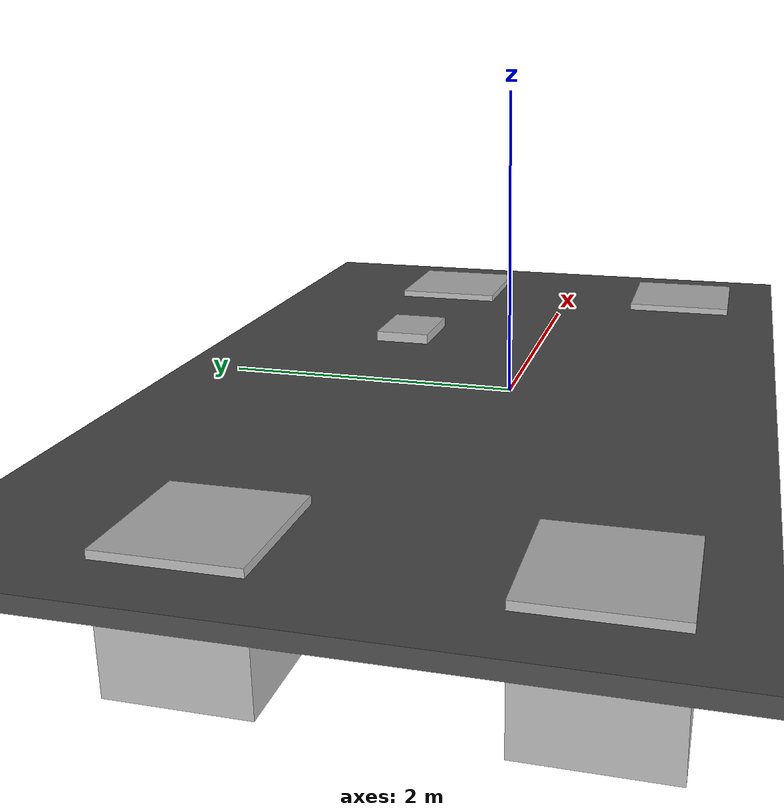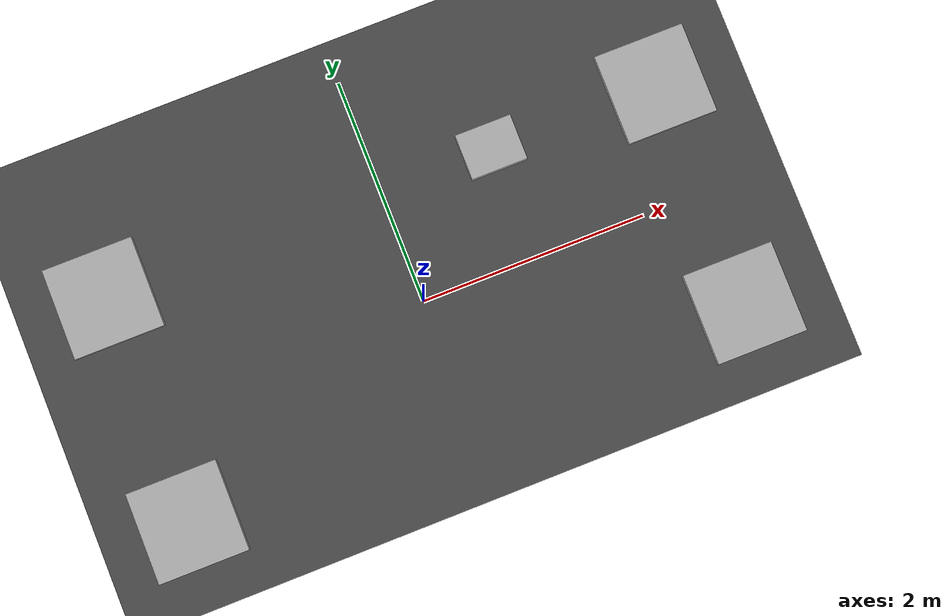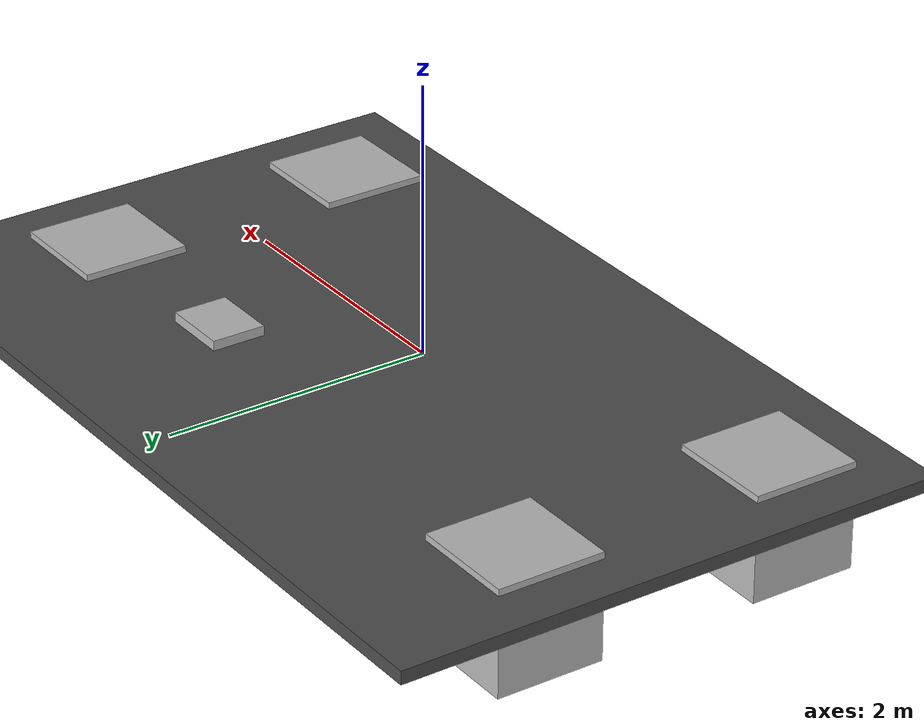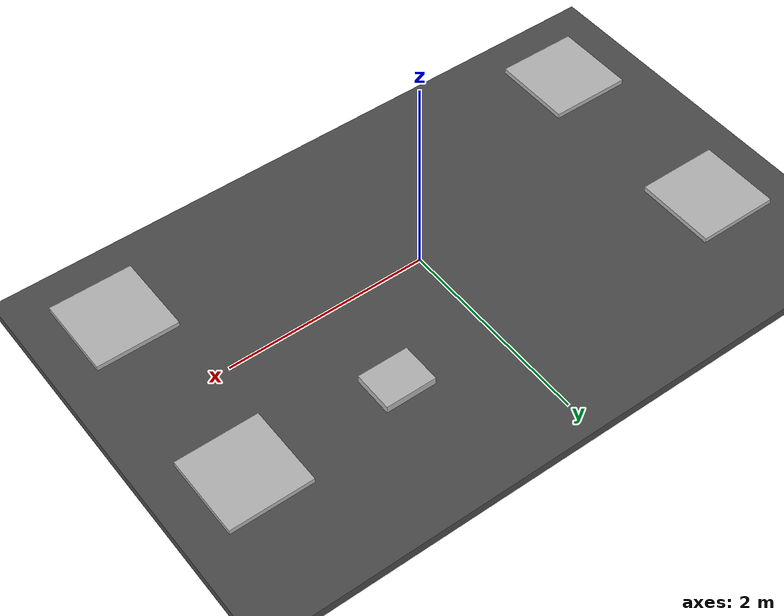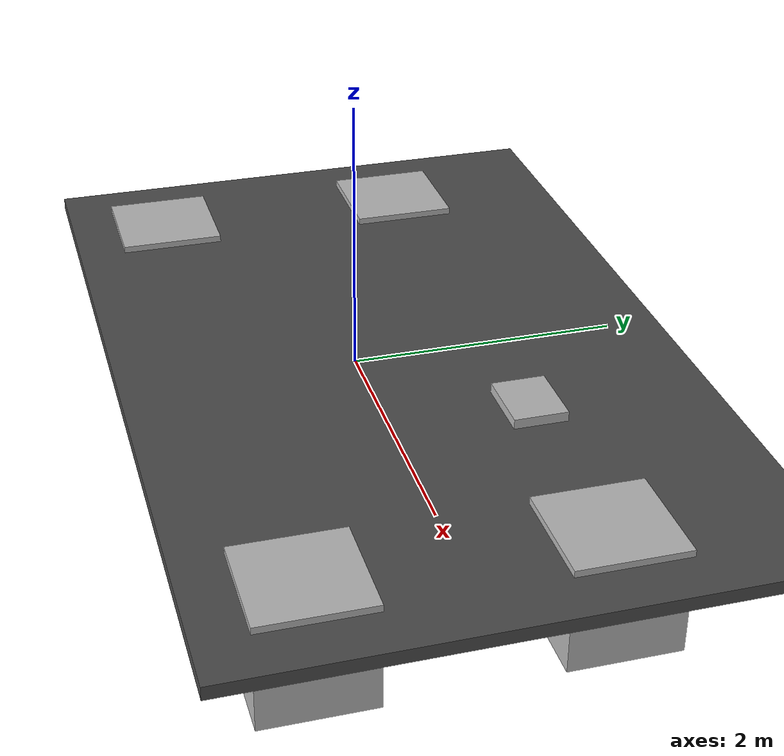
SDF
<sdf version="1.6">
 <world name="default">
  <light name="sun" type="directional">
   <pose>0 0 10 0 -0 0</pose>
   <diffuse>0.8 0.8 0.8 1</diffuse>
   <specular>0.2 0.2 0.2 1</specular>
   <attenuation>
    <range>1000</range>
    <constant>0.9</constant>
    <linear>0.01</linear>
    <quadratic>0.001</quadratic>
   </attenuation>
   <direction>-0.5 0.1 -0.9</direction>
  </light>
  <model name="ground_plane">
   <static>1</static>
   <link name="link">
    <collision name="collision">
     <geometry><plane><normal>0 0 1</normal><size>100 100</size></plane></geometry>
     <surface>
      <contact><collide_bitmask>65535</collide_bitmask></contact>
      <friction><ode><mu>100</mu><mu2>50</mu2></ode></friction>
     </surface>
    </collision>
    <visual name="visual">
     <cast_shadows>0</cast_shadows>
     <geometry><plane><normal>0 0 1</normal><size>100 100</size></plane></geometry>
     <material>
      <script><uri>file://media/materials/scripts/gazebo.material</uri><name>Gazebo/Grey</name></script>
     </material>
    </visual>
   </link>
  </model>
  <gravity>0 0 -9.8</gravity>
  <magnetic_field>6e-06 2.3e-05 -4.2e-05</magnetic_field>
  <atmosphere type="adiabatic"/>
  <physics name="default_physics" default="0" type="ode">
   <max_step_size>0.001</max_step_size>
   <real_time_factor>1</real_time_factor>
   <real_time_update_rate>1000</real_time_update_rate>
  </physics>
  <scene><ambient>0.4 0.4 0.4 1</ambient><background>0.7 0.7 0.7 1</background><shadows>1</shadows></scene>
  <spherical_coordinates>
   <surface_model>EARTH_WGS84</surface_model>
   <latitude_deg>0</latitude_deg>
   <longitude_deg>0</longitude_deg>
   <elevation>0</elevation>
   <heading_deg>0</heading_deg>
  </spherical_coordinates>
  <model name="asphalt_plane">
   <static>1</static>
   <link name="link">
    <collision name="collision"><geometry><box><size>20 20 0.1</size></box></geometry></collision>
    <visual name="visual">
     <cast_shadows>0</cast_shadows>
     <geometry><box><size>20 20 0.1</size></box></geometry>
     <material>
      <script>
       <uri>model://asphalt_plane/materials/scripts</uri>
       <uri>model://asphalt_plane/materials/textures</uri>
       <name>vrc/asphalt</name>
      </script>
     </material>
    </visual>
   </link>
   <pose>-0.071622 0.034885 0 0 -0 0</pose>
  </model>
  <model name="number1">
   <pose>2.5 -1 -0.3 0 -0 3.14</pose>
   <static>1</static>
   <link name="link">
    <visual name="visual">
     <geometry><mesh><uri>model://number1/meshes/number.dae</uri></mesh></geometry>
     <material>
      <script>
       <uri>model://number1/materials/scripts</uri>
       <uri>model://number1/materials/textures</uri>
       <name>Number/One</name>
      </script>
     </material>
    </visual>
   </link>
  </model>
  <model name="number2">
   <pose>2.5 1 -0.3 0 -0 3.14</pose>
   <static>1</static>
   <link name="link">
    <visual name="visual">
     <geometry><mesh><uri>model://number1/meshes/number.dae</uri></mesh></geometry>
     <material>
      <script>
       <uri>model://number2/materials/scripts</uri>
       <uri>model://number2/materials/textures</uri>
       <name>Number/Two</name>
      </script>
     </material>
    </visual>
   </link>
  </model>
  <model name="number3">
   <pose>-2.5 1 -0.3 0 -0 3.14</pose>
   <static>1</static>
   <link name="link">
    <visual name="visual">
     <geometry><mesh><uri>model://number1/meshes/number.dae</uri></mesh></geometry>
     <material>
      <script>
       <uri>model://number3/materials/scripts</uri>
       <uri>model://number3/materials/textures</uri>
       <name>Number/Three</name>
      </script>
     </material>
    </visual>
   </link>
  </model>
  <model name="number4">
   <pose>-2.5 -1 -0.3 0 -0 3.14</pose>
   <static>1</static>
   <link name="link">
    <visual name="visual">
     <geometry><mesh><uri>model://number1/meshes/number.dae</uri></mesh></geometry>
     <material>
      <script>
       <uri>model://number4/materials/scripts</uri>
       <uri>model://number4/materials/textures</uri>
       <name>Number/Four</name>
      </script>
     </material>
    </visual>
   </link>
  </model>
  <model name="cardboard_box">
   <pose>0.999898 0.999936 -0.026247 -0.001209 0.000967 3.13999</pose>
   <link name="link">
    <inertial>
     <mass>2</mass>
     <inertia>
      <ixx>0.0416667</ixx>
      <ixy>0</ixy>
      <ixz>0</ixz>
      <iyy>0.0566667</iyy>
      <iyz>0</iyz>
      <izz>0.0683333</izz>
     </inertia>
    </inertial>
    <collision name="collision">
     <geometry><box><size>0.5 0.4 0.3</size></box></geometry>
     <surface>
      <friction><ode><mu>1</mu><mu2>1</mu2></ode></friction>
      <contact><ode><kp>1e+07</kp><kd>1</kd><min_depth>0.001</min_depth><max_vel>0.1</max_vel></ode></contact>
     </surface>
    </collision>
    <visual name="visual">
     <pose>0 0 -0.15 0 -0 0</pose>
     <geometry>
      <mesh><uri>model://cardboard_box/meshes/cardboard_box.dae</uri><scale>1.25932 1.00745 0.755591</scale></mesh>
     </geometry>
    </visual>
   </link>
  </model>
 </world>
</sdf>
